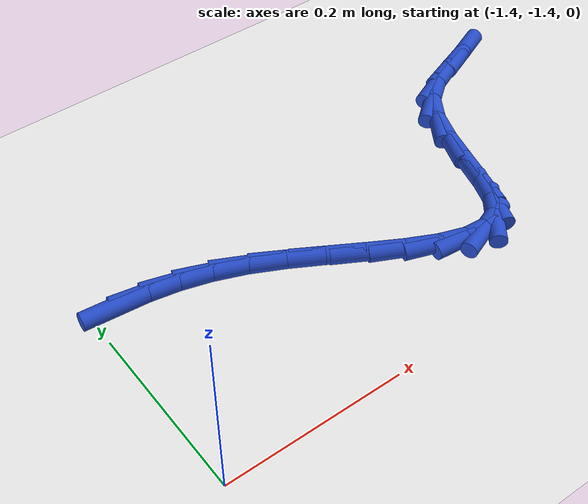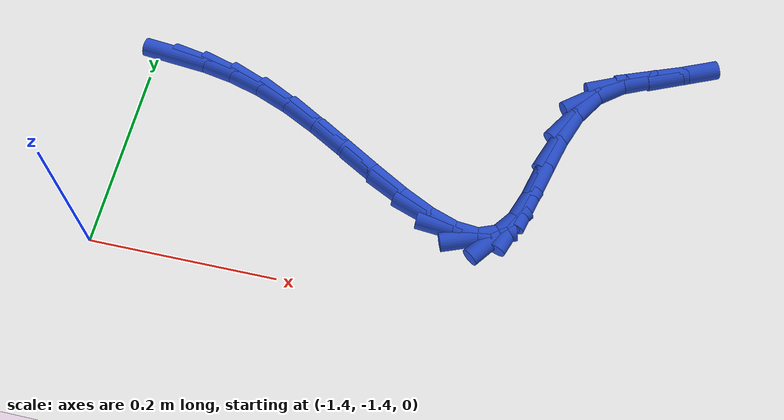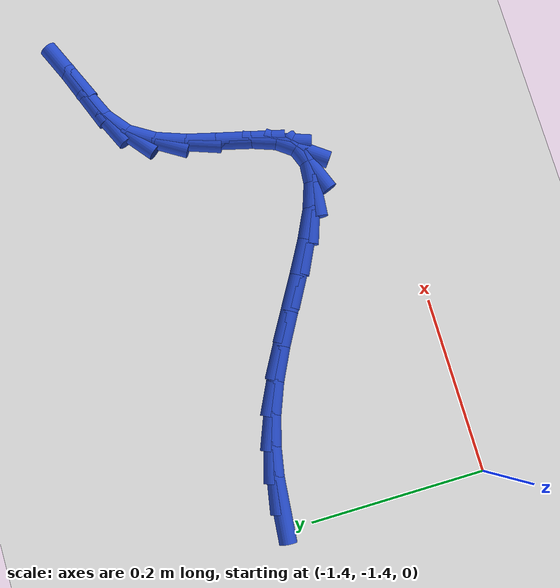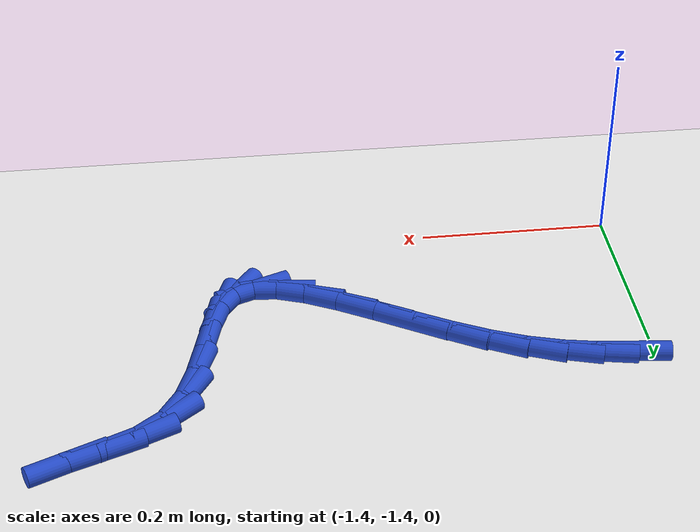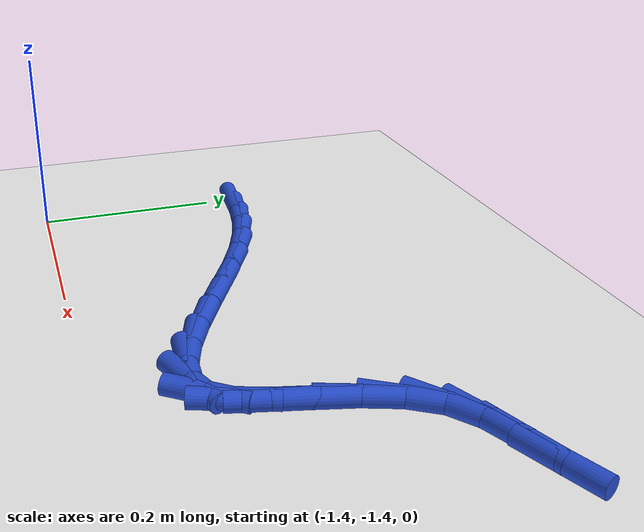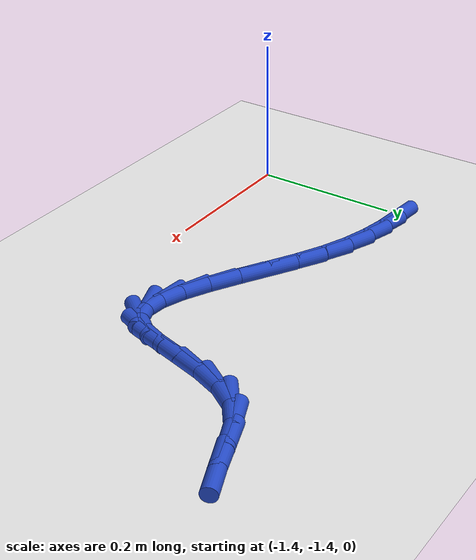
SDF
<sdf version="1.6">
 <world name="default">
  <model name="ground_plane">
   <static>1</static>
   <link name="link">
    <collision name="collision">
     <geometry><plane><normal>0 0 1</normal><size>100 100</size></plane></geometry>
     <surface><friction><ode><mu>100</mu><mu2>50</mu2></ode></friction></surface>
    </collision>
    <visual name="visual">
     <cast_shadows>0</cast_shadows>
     <geometry><plane><normal>0 0 1</normal><size>100 100</size></plane></geometry>
     <material>
      <script><uri>file://media/materials/scripts/gazebo.material</uri><name>Gazebo/WhiteGlow</name></script>
     </material>
    </visual>
   </link>
  </model>
  <model name="line">
   <link name="link_196">
    <pose>-1.3730575609748534 -1.1721380893992372 0.01 0 1.57 -0.09692981755009729</pose>
    <collision name="collision">
     <geometry><cylinder><radius>0.01</radius><length>0.08</length></cylinder></geometry>
    </collision>
    <visual name="visual">
     <material>
      <script><name>Gazebo/Blue</name><uri>file://media/materials/scripts/gazebo.material</uri></script>
     </material>
     <geometry><cylinder><radius>0.01</radius><length>0.08</length></cylinder></geometry>
    </visual>
   </link>
   <link name="link_197">
    <pose>-1.3407857797519105 -1.1752760207887414 0.01 0 1.57 -0.18639267298547152</pose>
    <collision name="collision">
     <geometry><cylinder><radius>0.01</radius><length>0.08</length></cylinder></geometry>
    </collision>
    <visual name="visual">
     <material>
      <script><name>Gazebo/Blue</name><uri>file://media/materials/scripts/gazebo.material</uri></script>
     </material>
     <geometry><cylinder><radius>0.01</radius><length>0.08</length></cylinder></geometry>
    </visual>
   </link>
   <link name="link_198">
    <pose>-1.3078153917908368 -1.1814936314068436 0.01 0 1.57 -0.28172962055210743</pose>
    <collision name="collision">
     <geometry><cylinder><radius>0.01</radius><length>0.08</length></cylinder></geometry>
    </collision>
    <visual name="visual">
     <material>
      <script><name>Gazebo/Blue</name><uri>file://media/materials/scripts/gazebo.material</uri></script>
     </material>
     <geometry><cylinder><radius>0.01</radius><length>0.08</length></cylinder></geometry>
    </visual>
   </link>
   <link name="link_199">
    <pose>-1.2739433279666916 -1.191297151639866 0.01 0 1.57 -0.37816117061582694</pose>
    <collision name="collision">
     <geometry><cylinder><radius>0.01</radius><length>0.08</length></cylinder></geometry>
    </collision>
    <visual name="visual">
     <material>
      <script><name>Gazebo/Blue</name><uri>file://media/materials/scripts/gazebo.material</uri></script>
     </material>
     <geometry><cylinder><radius>0.01</radius><length>0.08</length></cylinder></geometry>
    </visual>
   </link>
   <link name="link_200">
    <pose>-1.2389665191545332 -1.2051928118741304 0.01 0 1.57 -0.4650693255286394</pose>
    <collision name="collision">
     <geometry><cylinder><radius>0.01</radius><length>0.08</length></cylinder></geometry>
    </collision>
    <visual name="visual">
     <material>
      <script><name>Gazebo/Blue</name><uri>file://media/materials/scripts/gazebo.material</uri></script>
     </material>
     <geometry><cylinder><radius>0.01</radius><length>0.08</length></cylinder></geometry>
    </visual>
   </link>
   <link name="link_201">
    <pose>-1.20283786155453 -1.2233213922782538 0.01 0 1.57 -0.516216316165339</pose>
    <collision name="collision">
     <geometry><cylinder><radius>0.01</radius><length>0.08</length></cylinder></geometry>
    </collision>
    <visual name="visual">
     <material>
      <script><name>Gazebo/Blue</name><uri>file://media/materials/scripts/gazebo.material</uri></script>
     </material>
     <geometry><cylinder><radius>0.01</radius><length>0.08</length></cylinder></geometry>
    </visual>
   </link>
   <link name="link_202">
    <pose>-1.1662519988774884 -1.2440856470265798 0.01 0 1.57 -0.532437249055958</pose>
    <collision name="collision">
     <geometry><cylinder><radius>0.01</radius><length>0.08</length></cylinder></geometry>
    </collision>
    <visual name="visual">
     <material>
      <script><name>Gazebo/Blue</name><uri>file://media/materials/scripts/gazebo.material</uri></script>
     </material>
     <geometry><cylinder><radius>0.01</radius><length>0.08</length></cylinder></geometry>
    </visual>
   </link>
   <link name="link_203">
    <pose>-1.1301238483401077 -1.2653721963346558 0.01 0 1.57 -0.5155621954583728</pose>
    <collision name="collision">
     <geometry><cylinder><radius>0.01</radius><length>0.08</length></cylinder></geometry>
    </collision>
    <visual name="visual">
     <material>
      <script><name>Gazebo/Blue</name><uri>file://media/materials/scripts/gazebo.material</uri></script>
     </material>
     <geometry><cylinder><radius>0.01</radius><length>0.08</length></cylinder></geometry>
    </visual>
   </link>
   <link name="link_204">
    <pose>-1.0953683627375854 -1.285067577052254 0.01 0 1.57 -0.4576376597916174</pose>
    <collision name="collision">
     <geometry><cylinder><radius>0.01</radius><length>0.08</length></cylinder></geometry>
    </collision>
    <visual name="visual">
     <material>
      <script><name>Gazebo/Blue</name><uri>file://media/materials/scripts/gazebo.material</uri></script>
     </material>
     <geometry><cylinder><radius>0.01</radius><length>0.08</length></cylinder></geometry>
    </visual>
   </link>
   <link name="link_205">
    <pose>-1.062900494865123 -1.3010583260291444 0.01 0 1.57 -0.33453625654259767</pose>
    <collision name="collision">
     <geometry><cylinder><radius>0.01</radius><length>0.08</length></cylinder></geometry>
    </collision>
    <visual name="visual">
     <material>
      <script><name>Gazebo/Blue</name><uri>file://media/materials/scripts/gazebo.material</uri></script>
     </material>
     <geometry><cylinder><radius>0.01</radius><length>0.08</length></cylinder></geometry>
    </visual>
   </link>
   <link name="link_206">
    <pose>-1.0336351975179174 -1.3112309801150994 0.01 0 1.57 -0.08888227384178052</pose>
    <collision name="collision">
     <geometry><cylinder><radius>0.01</radius><length>0.08</length></cylinder></geometry>
    </collision>
    <visual name="visual">
     <material>
      <script><name>Gazebo/Blue</name><uri>file://media/materials/scripts/gazebo.material</uri></script>
     </material>
     <geometry><cylinder><radius>0.01</radius><length>0.08</length></cylinder></geometry>
    </visual>
   </link>
   <link name="link_207">
    <pose>-1.0084874234911683 -1.3134720761598904 0.01 0 1.57 0.3700839205043427</pose>
    <collision name="collision">
     <geometry><cylinder><radius>0.01</radius><length>0.08</length></cylinder></geometry>
    </collision>
    <visual name="visual">
     <material>
      <script><name>Gazebo/Blue</name><uri>file://media/materials/scripts/gazebo.material</uri></script>
     </material>
     <geometry><cylinder><radius>0.01</radius><length>0.08</length></cylinder></geometry>
    </visual>
   </link>
   <link name="link_208">
    <pose>-0.9883721255800739 -1.3056681510132888 0.01 0 1.57 0.9311914270066989</pose>
    <collision name="collision">
     <geometry><cylinder><radius>0.01</radius><length>0.08</length></cylinder></geometry>
    </collision>
    <visual name="visual">
     <material>
      <script><name>Gazebo/Blue</name><uri>file://media/materials/scripts/gazebo.material</uri></script>
     </material>
     <geometry><cylinder><radius>0.01</radius><length>0.08</length></cylinder></geometry>
    </visual>
   </link>
   <link name="link_209">
    <pose>-0.9739094871104298 -1.2862272885776154 0.01 0 1.57 1.2283818901775005</pose>
    <collision name="collision">
     <geometry><cylinder><radius>0.01</radius><length>0.08</length></cylinder></geometry>
    </collision>
    <visual name="visual">
     <material>
      <script><name>Gazebo/Blue</name><uri>file://media/materials/scripts/gazebo.material</uri></script>
     </material>
     <geometry><cylinder><radius>0.01</radius><length>0.08</length></cylinder></geometry>
    </visual>
   </link>
   <link name="link_210">
    <pose>-0.9636006432972012 -1.257306886748431 0.01 0 1.57 1.3277146677203837</pose>
    <collision name="collision">
     <geometry><cylinder><radius>0.01</radius><length>0.08</length></cylinder></geometry>
    </collision>
    <visual name="visual">
     <material>
      <script><name>Gazebo/Blue</name><uri>file://media/materials/scripts/gazebo.material</uri></script>
     </material>
     <geometry><cylinder><radius>0.01</radius><length>0.08</length></cylinder></geometry>
    </visual>
   </link>
   <link name="link_211">
    <pose>-0.9550197521358802 -1.222704480161291 0.01 0 1.57 1.3216245907691653</pose>
    <collision name="collision">
     <geometry><cylinder><radius>0.01</radius><length>0.08</length></cylinder></geometry>
    </collision>
    <visual name="visual">
     <material>
      <script><name>Gazebo/Blue</name><uri>file://media/materials/scripts/gazebo.material</uri></script>
     </material>
     <geometry><cylinder><radius>0.01</radius><length>0.08</length></cylinder></geometry>
    </visual>
   </link>
   <link name="link_212">
    <pose>-0.9457370657887515 -1.1862245141939003 0.01 0 1.57 1.225878316968607</pose>
    <collision name="collision">
     <geometry><cylinder><radius>0.01</radius><length>0.08</length></cylinder></geometry>
    </collision>
    <visual name="visual">
     <material>
      <script><name>Gazebo/Blue</name><uri>file://media/materials/scripts/gazebo.material</uri></script>
     </material>
     <geometry><cylinder><radius>0.01</radius><length>0.08</length></cylinder></geometry>
    </visual>
   </link>
   <link name="link_213">
    <pose>-0.933322836418099 -1.151671434223963 0.01 0 1.57 1.0131474858337977</pose>
    <collision name="collision">
     <geometry><cylinder><radius>0.01</radius><length>0.08</length></cylinder></geometry>
    </collision>
    <visual name="visual">
     <material>
      <script><name>Gazebo/Blue</name><uri>file://media/materials/scripts/gazebo.material</uri></script>
     </material>
     <geometry><cylinder><radius>0.01</radius><length>0.08</length></cylinder></geometry>
    </visual>
   </link>
   <link name="link_214">
    <pose>-0.9153473161862081 -1.1228496856291863 0.01 0 1.57 0.6697930269207895</pose>
    <collision name="collision">
     <geometry><cylinder><radius>0.01</radius><length>0.08</length></cylinder></geometry>
    </collision>
    <visual name="visual">
     <material>
      <script><name>Gazebo/Blue</name><uri>file://media/materials/scripts/gazebo.material</uri></script>
     </material>
     <geometry><cylinder><radius>0.01</radius><length>0.08</length></cylinder></geometry>
    </visual>
   </link>
   <link name="link_215">
    <pose>-0.8899751531269513 -1.1027570295774645 0.01 0 1.57 0.42397434539932993</pose>
    <collision name="collision">
     <geometry><cylinder><radius>0.01</radius><length>0.08</length></cylinder></geometry>
    </collision>
    <visual name="visual">
     <material>
      <script><name>Gazebo/Blue</name><uri>file://media/materials/scripts/gazebo.material</uri></script>
     </material>
     <geometry><cylinder><radius>0.01</radius><length>0.08</length></cylinder></geometry>
    </visual>
   </link>
   <link name="link_216">
    <pose>-0.8593813484034293 -1.088948577481283 0.01 0 1.57 0.3640202051388224</pose>
    <collision name="collision">
     <geometry><cylinder><radius>0.01</radius><length>0.08</length></cylinder></geometry>
    </collision>
    <visual name="visual">
     <material>
      <script><name>Gazebo/Blue</name><uri>file://media/materials/scripts/gazebo.material</uri></script>
     </material>
     <geometry><cylinder><radius>0.01</radius><length>0.08</length></cylinder></geometry>
    </visual>
   </link>
   <link name="link_217">
    <pose>-0.8273777271336097 -1.076755210050248 0.01 0 1.57 0.4107751176687565</pose>
    <collision name="collision">
     <geometry><cylinder><radius>0.01</radius><length>0.08</length></cylinder></geometry>
    </collision>
    <visual name="visual">
     <material>
      <script><name>Gazebo/Blue</name><uri>file://media/materials/scripts/gazebo.material</uri></script>
     </material>
     <geometry><cylinder><radius>0.01</radius><length>0.08</length></cylinder></geometry>
    </visual>
   </link>
  </model>
 </world>
</sdf>
